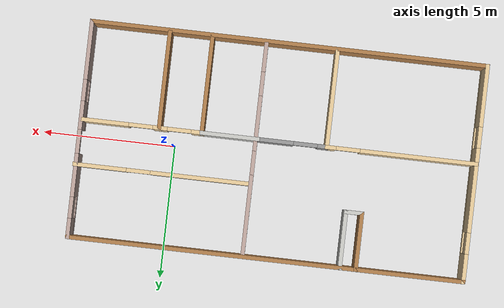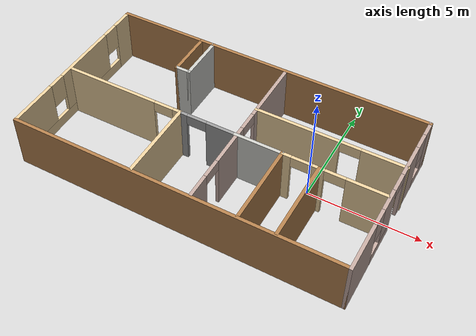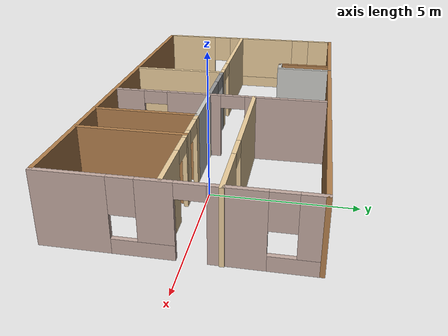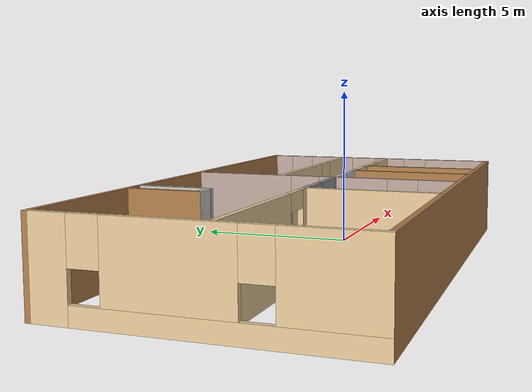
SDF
<?xml version='1.0'?>
<sdf version='1.6'>
  <model name='Building'>
    <pose frame=''>-3.87524 -0.223279 0 0 -0 0</pose>
    <link name='Wall_10'>
      <pose frame=''>-4.62797 -0.372796 0 0 -0 0</pose>
      <visual name='Wall_10_Visual_0'>
        <pose frame=''>-0.658179 0 1.25 0 -0 0</pose>
        <geometry>
          <box>
            <size>4.43364 0.15 2.5</size>
          </box>
        </geometry>
        <material>
          <script>
            <uri>file://media/materials/scripts/gazebo.material</uri>
            <name>Gazebo/Grey</name>
          </script>
          <ambient>0.921569 0.807843 0.615686 1</ambient>
        </material>
        <meta>
          <layer>0</layer>
        </meta>
      </visual>
      <collision name='Wall_10_Collision_0'>
        <geometry>
          <box>
            <size>4.43364 0.15 2.5</size>
          </box>
        </geometry>
        <pose frame=''>-0.658179 0 1.25 0 -0 0</pose>
      </collision>
      <visual name='Wall_10_Visual_1'>
        <pose frame=''>2.66682 0 1.25 0 -0 0</pose>
        <geometry>
          <box>
            <size>0.416358 0.15 2.5</size>
          </box>
        </geometry>
        <material>
          <script>
            <uri>file://media/materials/scripts/gazebo.material</uri>
            <name>Gazebo/Grey</name>
          </script>
          <ambient>0.921569 0.807843 0.615686 1</ambient>
        </material>
        <meta>
          <layer>0</layer>
        </meta>
      </visual>
      <collision name='Wall_10_Collision_1'>
        <geometry>
          <box>
            <size>0.416358 0.15 2.5</size>
          </box>
        </geometry>
        <pose frame=''>2.66682 0 1.25 0 -0 0</pose>
      </collision>
      <visual name='Wall_10_Visual_2'>
        <pose frame=''>2.00864 0 2.25 0 -0 0</pose>
        <geometry>
          <box>
            <size>0.9 0.15 0.5</size>
          </box>
        </geometry>
        <material>
          <script>
            <uri>file://media/materials/scripts/gazebo.material</uri>
            <name>Gazebo/Grey</name>
          </script>
          <ambient>0.921569 0.807843 0.615686 1</ambient>
        </material>
        <meta>
          <layer>0</layer>
        </meta>
      </visual>
      <collision name='Wall_10_Collision_2'>
        <geometry>
          <box>
            <size>0.9 0.15 0.5</size>
          </box>
        </geometry>
        <pose frame=''>2.00864 0 2.25 0 -0 0</pose>
      </collision>
    </link>
    <link name='Wall_11'>
      <collision name='Wall_11_Collision'>
        <geometry>
          <box>
            <size>3.75 0.15 2.5</size>
          </box>
        </geometry>
        <pose frame=''>0 0 1.25 0 -0 0</pose>
      </collision>
      <visual name='Wall_11_Visual'>
        <pose frame=''>0 0 1.25 0 -0 0</pose>
        <geometry>
          <box>
            <size>3.75 0.15 2.5</size>
          </box>
        </geometry>
        <material>
          <script>
            <uri>file://media/materials/scripts/gazebo.material</uri>
            <name>Gazebo/Grey</name>
          </script>
          <ambient>0.921569 0.807843 0.615686 1</ambient>
        </material>
        <meta>
          <layer>0</layer>
        </meta>
      </visual>
      <pose frame=''>-1.82797 -2.1728 0 0 0 -1.5708</pose>
    </link>
    <link name='Wall_13'>
      <collision name='Wall_13_Collision'>
        <geometry>
          <box>
            <size>15 0.15 2.5</size>
          </box>
        </geometry>
        <pose frame=''>0 0 1.25 0 -0 0</pose>
      </collision>
      <visual name='Wall_13_Visual'>
        <pose frame=''>0 0 1.25 0 -0 0</pose>
        <geometry>
          <box>
            <size>15 0.15 2.5</size>
          </box>
        </geometry>
        <material>
          <script>
            <uri>file://media/materials/scripts/gazebo.material</uri>
            <name>Gazebo/Wood</name>
          </script>
          <ambient>1 1 1 1</ambient>
        </material>
        <meta>
          <layer>0</layer>
        </meta>
      </visual>
      <pose frame=''>-0.019546 4.05 0 0 -0 0</pose>
    </link>
    <link name='Wall_17'>
      <pose frame=''>0.844548 -0.003816 0 0 0 -1.5708</pose>
      <visual name='Wall_17_Visual_0'>
        <pose frame=''>-2.48974 0 1.25 0 -0 0</pose>
        <geometry>
          <box>
            <size>3.02052 0.15 2.5</size>
          </box>
        </geometry>
        <material>
          <script>
            <uri>file://media/materials/scripts/gazebo.material</uri>
            <name>Gazebo/Grey</name>
          </script>
          <ambient>0.760784 0.662745 0.627451 1</ambient>
        </material>
        <meta>
          <layer>0</layer>
        </meta>
      </visual>
      <collision name='Wall_17_Collision_0'>
        <geometry>
          <box>
            <size>3.02052 0.15 2.5</size>
          </box>
        </geometry>
        <pose frame=''>-2.48974 0 1.25 0 -0 0</pose>
      </collision>
      <visual name='Wall_17_Visual_1'>
        <pose frame=''>0.954141 0 1.25 0 -0 0</pose>
        <geometry>
          <box>
            <size>2.06725 0.15 2.5</size>
          </box>
        </geometry>
        <material>
          <script>
            <uri>file://media/materials/scripts/gazebo.material</uri>
            <name>Gazebo/Grey</name>
          </script>
          <ambient>0.760784 0.662745 0.627451 1</ambient>
        </material>
        <meta>
          <layer>0</layer>
        </meta>
      </visual>
      <collision name='Wall_17_Collision_1'>
        <geometry>
          <box>
            <size>2.06725 0.15 2.5</size>
          </box>
        </geometry>
        <pose frame=''>0.954141 0 1.25 0 -0 0</pose>
      </collision>
      <visual name='Wall_17_Visual_2'>
        <pose frame=''>3.44388 0 1.25 0 -0 0</pose>
        <geometry>
          <box>
            <size>1.11223 0.15 2.5</size>
          </box>
        </geometry>
        <material>
          <script>
            <uri>file://media/materials/scripts/gazebo.material</uri>
            <name>Gazebo/Grey</name>
          </script>
          <ambient>0.760784 0.662745 0.627451 1</ambient>
        </material>
        <meta>
          <layer>0</layer>
        </meta>
      </visual>
      <collision name='Wall_17_Collision_2'>
        <geometry>
          <box>
            <size>1.11223 0.15 2.5</size>
          </box>
        </geometry>
        <pose frame=''>3.44388 0 1.25 0 -0 0</pose>
      </collision>
      <visual name='Wall_17_Visual_3'>
        <pose frame=''>-0.529485 0 2.25 0 -0 0</pose>
        <geometry>
          <box>
            <size>0.9 0.15 0.5</size>
          </box>
        </geometry>
        <material>
          <script>
            <uri>file://media/materials/scripts/gazebo.material</uri>
            <name>Gazebo/Grey</name>
          </script>
          <ambient>0.760784 0.662745 0.627451 1</ambient>
        </material>
        <meta>
          <layer>0</layer>
        </meta>
      </visual>
      <collision name='Wall_17_Collision_3'>
        <geometry>
          <box>
            <size>0.9 0.15 0.5</size>
          </box>
        </geometry>
        <pose frame=''>-0.529485 0 2.25 0 -0 0</pose>
      </collision>
      <visual name='Wall_17_Visual_4'>
        <pose frame=''>2.43777 0 2.25 0 -0 0</pose>
        <geometry>
          <box>
            <size>0.9 0.15 0.5</size>
          </box>
        </geometry>
        <material>
          <script>
            <uri>file://media/materials/scripts/gazebo.material</uri>
            <name>Gazebo/Grey</name>
          </script>
          <ambient>0.760784 0.662745 0.627451 1</ambient>
        </material>
        <meta>
          <layer>0</layer>
        </meta>
      </visual>
      <collision name='Wall_17_Collision_4'>
        <geometry>
          <box>
            <size>0.9 0.15 0.5</size>
          </box>
        </geometry>
        <pose frame=''>2.43777 0 2.25 0 -0 0</pose>
      </collision>
    </link>
    <link name='Wall_19'>
      <pose frame=''>-0.52797 -0.372796 0 0 -0 0</pose>
      <visual name='Wall_19_Visual_0'>
        <pose frame=''>-1.15924 0 1.25 0 -0 0</pose>
        <geometry>
          <box>
            <size>0.431514 0.15 2.5</size>
          </box>
        </geometry>
        <material>
          <script>
            <uri>file://media/materials/scripts/gazebo.material</uri>
            <name>Gazebo/Grey</name>
          </script>
          <ambient>1 1 1 1</ambient>
        </material>
        <meta>
          <layer>0</layer>
        </meta>
      </visual>
      <collision name='Wall_19_Collision_0'>
        <geometry>
          <box>
            <size>0.431514 0.15 2.5</size>
          </box>
        </geometry>
        <pose frame=''>-1.15924 0 1.25 0 -0 0</pose>
      </collision>
      <visual name='Wall_19_Visual_1'>
        <pose frame=''>0.665757 0 1.25 0 -0 0</pose>
        <geometry>
          <box>
            <size>1.41849 0.15 2.5</size>
          </box>
        </geometry>
        <material>
          <script>
            <uri>file://media/materials/scripts/gazebo.material</uri>
            <name>Gazebo/Grey</name>
          </script>
          <ambient>1 1 1 1</ambient>
        </material>
        <meta>
          <layer>0</layer>
        </meta>
      </visual>
      <collision name='Wall_19_Collision_1'>
        <geometry>
          <box>
            <size>1.41849 0.15 2.5</size>
          </box>
        </geometry>
        <pose frame=''>0.665757 0 1.25 0 -0 0</pose>
      </collision>
      <visual name='Wall_19_Visual_2'>
        <pose frame=''>-0.493486 0 2.25 0 -0 0</pose>
        <geometry>
          <box>
            <size>0.9 0.15 0.5</size>
          </box>
        </geometry>
        <material>
          <script>
            <uri>file://media/materials/scripts/gazebo.material</uri>
            <name>Gazebo/Grey</name>
          </script>
          <ambient>1 1 1 1</ambient>
        </material>
        <meta>
          <layer>0</layer>
        </meta>
      </visual>
      <collision name='Wall_19_Collision_2'>
        <geometry>
          <box>
            <size>0.9 0.15 0.5</size>
          </box>
        </geometry>
        <pose frame=''>-0.493486 0 2.25 0 -0 0</pose>
      </collision>
    </link>
    <link name='Wall_23'>
      <collision name='Wall_23_Collision'>
        <geometry>
          <box>
            <size>2.25 0.15 2.5</size>
          </box>
        </geometry>
        <pose frame=''>0 0 1.25 0 -0 0</pose>
      </collision>
      <visual name='Wall_23_Visual'>
        <pose frame=''>0 0 1.25 0 -0 0</pose>
        <geometry>
          <box>
            <size>2.25 0.15 2.5</size>
          </box>
        </geometry>
        <material>
          <script>
            <uri>file://media/materials/scripts/gazebo.material</uri>
            <name>Gazebo/Wood</name>
          </script>
          <ambient>1 1 1 1</ambient>
        </material>
        <meta>
          <layer>0</layer>
        </meta>
      </visual>
      <pose frame=''>-3.40749 2.99355 0 0 0 -1.5708</pose>
    </link>
    <link name='Wall_24'>
      <collision name='Wall_24_Collision'>
        <geometry>
          <box>
            <size>0.75 0.15 2.5</size>
          </box>
        </geometry>
        <pose frame=''>0 0 1.25 0 -0 0</pose>
      </collision>
      <visual name='Wall_24_Visual'>
        <pose frame=''>0 0 1.25 0 -0 0</pose>
        <geometry>
          <box>
            <size>0.75 0.15 2.5</size>
          </box>
        </geometry>
        <material>
          <script>
            <uri>file://media/materials/scripts/gazebo.material</uri>
            <name>Gazebo/CeilingTiled</name>
          </script>
          <ambient>1 1 1 1</ambient>
        </material>
        <meta>
          <layer>0</layer>
        </meta>
      </visual>
      <pose frame=''>-3.10749 1.94355 0 0 -0 0</pose>
    </link>
    <link name='Wall_27'>
      <collision name='Wall_27_Collision'>
        <geometry>
          <box>
            <size>2.25 0.15 2.5</size>
          </box>
        </geometry>
        <pose frame=''>0 0 1.25 0 -0 0</pose>
      </collision>
      <visual name='Wall_27_Visual'>
        <pose frame=''>0 0 1.25 0 -0 0</pose>
        <geometry>
          <box>
            <size>2.25 0.15 2.5</size>
          </box>
        </geometry>
        <material>
          <script>
            <uri>file://media/materials/scripts/gazebo.material</uri>
            <name>Gazebo/CeilingTiled</name>
          </script>
          <ambient>1 1 1 1</ambient>
        </material>
        <meta>
          <layer>0</layer>
        </meta>
      </visual>
      <pose frame=''>-2.80749 2.99355 0 0 -0 1.5708</pose>
    </link>
    <link name='Wall_3'>
      <pose frame=''>-7.44455 0 0 0 0 -1.5708</pose>
      <visual name='Wall_3_Visual_0'>
        <pose frame=''>-3.5654 0 1.25 0 -0 0</pose>
        <geometry>
          <box>
            <size>1.1192 0.15 2.5</size>
          </box>
        </geometry>
        <material>
          <script>
            <uri>file://media/materials/scripts/gazebo.material</uri>
            <name>Gazebo/Grey</name>
          </script>
          <ambient>0.921569 0.807843 0.615686 1</ambient>
        </material>
        <meta>
          <layer>0</layer>
        </meta>
      </visual>
      <collision name='Wall_3_Collision_0'>
        <geometry>
          <box>
            <size>1.1192 0.15 2.5</size>
          </box>
        </geometry>
        <pose frame=''>-3.5654 0 1.25 0 -0 0</pose>
      </collision>
      <visual name='Wall_3_Visual_1'>
        <pose frame=''>0.559598 0 0.25 0 -0 0</pose>
        <geometry>
          <box>
            <size>7.1308 0.15 0.5</size>
          </box>
        </geometry>
        <material>
          <script>
            <uri>file://media/materials/scripts/gazebo.material</uri>
            <name>Gazebo/Grey</name>
          </script>
          <ambient>0.921569 0.807843 0.615686 1</ambient>
        </material>
        <meta>
          <layer>0</layer>
        </meta>
      </visual>
      <collision name='Wall_3_Collision_1'>
        <geometry>
          <box>
            <size>7.1308 0.15 0.5</size>
          </box>
        </geometry>
        <pose frame=''>0.559598 0 0.25 0 -0 0</pose>
      </collision>
      <visual name='Wall_3_Visual_2'>
        <pose frame=''>-0.61744 0 1.5 0 -0 0</pose>
        <geometry>
          <box>
            <size>3.17673 0.15 2</size>
          </box>
        </geometry>
        <material>
          <script>
            <uri>file://media/materials/scripts/gazebo.material</uri>
            <name>Gazebo/Grey</name>
          </script>
          <ambient>0.921569 0.807843 0.615686 1</ambient>
        </material>
        <meta>
          <layer>0</layer>
        </meta>
      </visual>
      <collision name='Wall_3_Collision_2'>
        <geometry>
          <box>
            <size>3.17673 0.15 2</size>
          </box>
        </geometry>
        <pose frame=''>-0.61744 0 1.5 0 -0 0</pose>
      </collision>
      <visual name='Wall_3_Visual_3'>
        <pose frame=''>2.94796 0 1.5 0 -0 0</pose>
        <geometry>
          <box>
            <size>2.35407 0.15 2</size>
          </box>
        </geometry>
        <material>
          <script>
            <uri>file://media/materials/scripts/gazebo.material</uri>
            <name>Gazebo/Grey</name>
          </script>
          <ambient>0.921569 0.807843 0.615686 1</ambient>
        </material>
        <meta>
          <layer>0</layer>
        </meta>
      </visual>
      <collision name='Wall_3_Collision_3'>
        <geometry>
          <box>
            <size>2.35407 0.15 2</size>
          </box>
        </geometry>
        <pose frame=''>2.94796 0 1.5 0 -0 0</pose>
      </collision>
      <visual name='Wall_3_Visual_4'>
        <pose frame=''>-2.6058 0 1.9 0 -0 0</pose>
        <geometry>
          <box>
            <size>0.8 0.15 1.2</size>
          </box>
        </geometry>
        <material>
          <script>
            <uri>file://media/materials/scripts/gazebo.material</uri>
            <name>Gazebo/Grey</name>
          </script>
          <ambient>0.921569 0.807843 0.615686 1</ambient>
        </material>
        <meta>
          <layer>0</layer>
        </meta>
      </visual>
      <collision name='Wall_3_Collision_4'>
        <geometry>
          <box>
            <size>0.8 0.15 1.2</size>
          </box>
        </geometry>
        <pose frame=''>-2.6058 0 1.9 0 -0 0</pose>
      </collision>
      <visual name='Wall_3_Visual_5'>
        <pose frame=''>1.37092 0 1.9 0 -0 0</pose>
        <geometry>
          <box>
            <size>0.8 0.15 1.2</size>
          </box>
        </geometry>
        <material>
          <script>
            <uri>file://media/materials/scripts/gazebo.material</uri>
            <name>Gazebo/Grey</name>
          </script>
          <ambient>0.921569 0.807843 0.615686 1</ambient>
        </material>
        <meta>
          <layer>0</layer>
        </meta>
      </visual>
      <collision name='Wall_3_Collision_5'>
        <geometry>
          <box>
            <size>0.8 0.15 1.2</size>
          </box>
        </geometry>
        <pose frame=''>1.37092 0 1.9 0 -0 0</pose>
      </collision>
    </link>
    <link name='Wall_31'>
      <pose frame=''>4.14455 1.32102 0 0 -0 0</pose>
      <visual name='Wall_31_Visual_0'>
        <pose frame=''>-1.45177 0 1.25 0 -0 0</pose>
        <geometry>
          <box>
            <size>3.84645 0.15 2.5</size>
          </box>
        </geometry>
        <material>
          <script>
            <uri>file://media/materials/scripts/gazebo.material</uri>
            <name>Gazebo/Grey</name>
          </script>
          <ambient>0.921569 0.807843 0.615686 1</ambient>
        </material>
        <meta>
          <layer>0</layer>
        </meta>
      </visual>
      <collision name='Wall_31_Collision_0'>
        <geometry>
          <box>
            <size>3.84645 0.15 2.5</size>
          </box>
        </geometry>
        <pose frame=''>-1.45177 0 1.25 0 -0 0</pose>
      </collision>
      <visual name='Wall_31_Visual_1'>
        <pose frame=''>2.37323 0 1.25 0 -0 0</pose>
        <geometry>
          <box>
            <size>2.00355 0.15 2.5</size>
          </box>
        </geometry>
        <material>
          <script>
            <uri>file://media/materials/scripts/gazebo.material</uri>
            <name>Gazebo/Grey</name>
          </script>
          <ambient>0.921569 0.807843 0.615686 1</ambient>
        </material>
        <meta>
          <layer>0</layer>
        </meta>
      </visual>
      <collision name='Wall_31_Collision_1'>
        <geometry>
          <box>
            <size>2.00355 0.15 2.5</size>
          </box>
        </geometry>
        <pose frame=''>2.37323 0 1.25 0 -0 0</pose>
      </collision>
      <visual name='Wall_31_Visual_2'>
        <pose frame=''>0.921452 0 2.25 0 -0 0</pose>
        <geometry>
          <box>
            <size>0.9 0.15 0.5</size>
          </box>
        </geometry>
        <material>
          <script>
            <uri>file://media/materials/scripts/gazebo.material</uri>
            <name>Gazebo/Grey</name>
          </script>
          <ambient>0.921569 0.807843 0.615686 1</ambient>
        </material>
        <meta>
          <layer>0</layer>
        </meta>
      </visual>
      <collision name='Wall_31_Collision_2'>
        <geometry>
          <box>
            <size>0.9 0.15 0.5</size>
          </box>
        </geometry>
        <pose frame=''>0.921452 0 2.25 0 -0 0</pose>
      </collision>
    </link>
    <link name='Wall_33'>
      <collision name='Wall_33_Collision'>
        <geometry>
          <box>
            <size>2.25 0.15 2.5</size>
          </box>
        </geometry>
        <pose frame=''>0 0 1.25 0 -0 0</pose>
      </collision>
      <visual name='Wall_33_Visual'>
        <pose frame=''>0 0 1.25 0 -0 0</pose>
        <geometry>
          <box>
            <size>2.25 0.15 2.5</size>
          </box>
        </geometry>
        <material>
          <script>
            <uri>file://media/materials/scripts/gazebo.material</uri>
            <name>Gazebo/CeilingTiled</name>
          </script>
          <ambient>1 1 1 1</ambient>
        </material>
        <meta>
          <layer>0</layer>
        </meta>
      </visual>
      <pose frame=''>1.82203 -0.372796 0 0 -0 0</pose>
    </link>
    <link name='Wall_34'>
      <collision name='Wall_34_Collision'>
        <geometry>
          <box>
            <size>3.75 0.15 2.5</size>
          </box>
        </geometry>
        <pose frame=''>0 0 1.25 0 -0 0</pose>
      </collision>
      <visual name='Wall_34_Visual'>
        <pose frame=''>0 0 1.25 0 -0 0</pose>
        <geometry>
          <box>
            <size>3.75 0.15 2.5</size>
          </box>
        </geometry>
        <material>
          <script>
            <uri>file://media/materials/scripts/gazebo.material</uri>
            <name>Gazebo/Wood</name>
          </script>
          <ambient>1 1 1 1</ambient>
        </material>
        <meta>
          <layer>0</layer>
        </meta>
      </visual>
      <pose frame=''>2.87203 -2.1728 0 0 0 -1.5708</pose>
    </link>
    <link name='Wall_36'>
      <pose frame=''>3.67203 -0.372796 0 0 -0 0</pose>
      <visual name='Wall_36_Visual_0'>
        <pose frame=''>-0.6385 0 1.25 0 -0 0</pose>
        <geometry>
          <box>
            <size>0.472999 0.15 2.5</size>
          </box>
        </geometry>
        <material>
          <script>
            <uri>file://media/materials/scripts/gazebo.material</uri>
            <name>Gazebo/Grey</name>
          </script>
          <ambient>0.921569 0.807843 0.615686 1</ambient>
        </material>
        <meta>
          <layer>0</layer>
        </meta>
      </visual>
      <collision name='Wall_36_Collision_0'>
        <geometry>
          <box>
            <size>0.472999 0.15 2.5</size>
          </box>
        </geometry>
        <pose frame=''>-0.6385 0 1.25 0 -0 0</pose>
      </collision>
      <visual name='Wall_36_Visual_1'>
        <pose frame=''>0.6865 0 1.25 0 -0 0</pose>
        <geometry>
          <box>
            <size>0.377001 0.15 2.5</size>
          </box>
        </geometry>
        <material>
          <script>
            <uri>file://media/materials/scripts/gazebo.material</uri>
            <name>Gazebo/Grey</name>
          </script>
          <ambient>0.921569 0.807843 0.615686 1</ambient>
        </material>
        <meta>
          <layer>0</layer>
        </meta>
      </visual>
      <collision name='Wall_36_Collision_1'>
        <geometry>
          <box>
            <size>0.377001 0.15 2.5</size>
          </box>
        </geometry>
        <pose frame=''>0.6865 0 1.25 0 -0 0</pose>
      </collision>
      <visual name='Wall_36_Visual_2'>
        <pose frame=''>0.047999 0 2.25 0 -0 0</pose>
        <geometry>
          <box>
            <size>0.9 0.15 0.5</size>
          </box>
        </geometry>
        <material>
          <script>
            <uri>file://media/materials/scripts/gazebo.material</uri>
            <name>Gazebo/Grey</name>
          </script>
          <ambient>0.921569 0.807843 0.615686 1</ambient>
        </material>
        <meta>
          <layer>0</layer>
        </meta>
      </visual>
      <collision name='Wall_36_Collision_2'>
        <geometry>
          <box>
            <size>0.9 0.15 0.5</size>
          </box>
        </geometry>
        <pose frame=''>0.047999 0 2.25 0 -0 0</pose>
      </collision>
    </link>
    <link name='Wall_37'>
      <collision name='Wall_37_Collision'>
        <geometry>
          <box>
            <size>3.75 0.15 2.5</size>
          </box>
        </geometry>
        <pose frame=''>0 0 1.25 0 -0 0</pose>
      </collision>
      <visual name='Wall_37_Visual'>
        <pose frame=''>0 0 1.25 0 -0 0</pose>
        <geometry>
          <box>
            <size>3.75 0.15 2.5</size>
          </box>
        </geometry>
        <material>
          <script>
            <uri>file://media/materials/scripts/gazebo.material</uri>
            <name>Gazebo/Wood</name>
          </script>
          <ambient>1 1 1 1</ambient>
        </material>
        <meta>
          <layer>0</layer>
        </meta>
      </visual>
      <pose frame=''>4.47203 -2.1728 0 0 0 -1.5708</pose>
    </link>
    <link name='Wall_39'>
      <pose frame=''>5.89703 -0.372796 0 0 -0 0</pose>
      <visual name='Wall_39_Visual_0'>
        <pose frame=''>-1.34463 0 1.25 0 -0 0</pose>
        <geometry>
          <box>
            <size>0.31074 0.15 2.5</size>
          </box>
        </geometry>
        <material>
          <script>
            <uri>file://media/materials/scripts/gazebo.material</uri>
            <name>Gazebo/Grey</name>
          </script>
          <ambient>0.921569 0.807843 0.615686 1</ambient>
        </material>
        <meta>
          <layer>0</layer>
        </meta>
      </visual>
      <collision name='Wall_39_Collision_0'>
        <geometry>
          <box>
            <size>0.31074 0.15 2.5</size>
          </box>
        </geometry>
        <pose frame=''>-1.34463 0 1.25 0 -0 0</pose>
      </collision>
      <visual name='Wall_39_Visual_1'>
        <pose frame=''>0.60537 0 1.25 0 -0 0</pose>
        <geometry>
          <box>
            <size>1.78926 0.15 2.5</size>
          </box>
        </geometry>
        <material>
          <script>
            <uri>file://media/materials/scripts/gazebo.material</uri>
            <name>Gazebo/Grey</name>
          </script>
          <ambient>0.921569 0.807843 0.615686 1</ambient>
        </material>
        <meta>
          <layer>0</layer>
        </meta>
      </visual>
      <collision name='Wall_39_Collision_1'>
        <geometry>
          <box>
            <size>1.78926 0.15 2.5</size>
          </box>
        </geometry>
        <pose frame=''>0.60537 0 1.25 0 -0 0</pose>
      </collision>
      <visual name='Wall_39_Visual_2'>
        <pose frame=''>-0.73926 0 2.25 0 -0 0</pose>
        <geometry>
          <box>
            <size>0.9 0.15 0.5</size>
          </box>
        </geometry>
        <material>
          <script>
            <uri>file://media/materials/scripts/gazebo.material</uri>
            <name>Gazebo/Grey</name>
          </script>
          <ambient>0.921569 0.807843 0.615686 1</ambient>
        </material>
        <meta>
          <layer>0</layer>
        </meta>
      </visual>
      <collision name='Wall_39_Collision_2'>
        <geometry>
          <box>
            <size>0.9 0.15 0.5</size>
          </box>
        </geometry>
        <pose frame=''>-0.73926 0 2.25 0 -0 0</pose>
      </collision>
    </link>
    <link name='Wall_4'>
      <collision name='Wall_4_Collision'>
        <geometry>
          <box>
            <size>15 0.15 2.5</size>
          </box>
        </geometry>
        <pose frame=''>0 0 1.25 0 -0 0</pose>
      </collision>
      <visual name='Wall_4_Visual'>
        <pose frame=''>0 0 1.25 0 -0 0</pose>
        <geometry>
          <box>
            <size>15 0.15 2.5</size>
          </box>
        </geometry>
        <material>
          <script>
            <uri>file://media/materials/scripts/gazebo.material</uri>
            <name>Gazebo/Wood</name>
          </script>
          <ambient>1 1 1 1</ambient>
        </material>
        <meta>
          <layer>0</layer>
        </meta>
      </visual>
      <pose frame=''>-0.019546 -4.05 0 0 -0 0</pose>
    </link>
    <link name='Wall_5'>
      <pose frame=''>7.40545 0 0 0 -0 1.5708</pose>
      <visual name='Wall_5_Visual_0'>
        <pose frame=''>-2.99385 0 1.25 0 -0 0</pose>
        <geometry>
          <box>
            <size>2.2623 0.15 2.5</size>
          </box>
        </geometry>
        <material>
          <script>
            <uri>file://media/materials/scripts/gazebo.material</uri>
            <name>Gazebo/Grey</name>
          </script>
          <ambient>0.760784 0.662745 0.627451 1</ambient>
        </material>
        <meta>
          <layer>0</layer>
        </meta>
      </visual>
      <collision name='Wall_5_Collision_0'>
        <geometry>
          <box>
            <size>2.2623 0.15 2.5</size>
          </box>
        </geometry>
        <pose frame=''>-2.99385 0 1.25 0 -0 0</pose>
      </collision>
      <visual name='Wall_5_Visual_1'>
        <pose frame=''>1.72839 0 1.25 0 -0 0</pose>
        <geometry>
          <box>
            <size>1.62781 0.15 2.5</size>
          </box>
        </geometry>
        <material>
          <script>
            <uri>file://media/materials/scripts/gazebo.material</uri>
            <name>Gazebo/Grey</name>
          </script>
          <ambient>0.760784 0.662745 0.627451 1</ambient>
        </material>
        <meta>
          <layer>0</layer>
        </meta>
      </visual>
      <collision name='Wall_5_Collision_1'>
        <geometry>
          <box>
            <size>1.62781 0.15 2.5</size>
          </box>
        </geometry>
        <pose frame=''>1.72839 0 1.25 0 -0 0</pose>
      </collision>
      <visual name='Wall_5_Visual_2'>
        <pose frame=''>-0.924104 0 0.25 0 -0 0</pose>
        <geometry>
          <box>
            <size>1.87718 0.15 0.5</size>
          </box>
        </geometry>
        <material>
          <script>
            <uri>file://media/materials/scripts/gazebo.material</uri>
            <name>Gazebo/Grey</name>
          </script>
          <ambient>0.760784 0.662745 0.627451 1</ambient>
        </material>
        <meta>
          <layer>0</layer>
        </meta>
      </visual>
      <collision name='Wall_5_Collision_2'>
        <geometry>
          <box>
            <size>1.87718 0.15 0.5</size>
          </box>
        </geometry>
        <pose frame=''>-0.924104 0 0.25 0 -0 0</pose>
      </collision>
      <visual name='Wall_5_Visual_3'>
        <pose frame=''>3.33365 0 0.25 0 -0 0</pose>
        <geometry>
          <box>
            <size>1.5827 0.15 0.5</size>
          </box>
        </geometry>
        <material>
          <script>
            <uri>file://media/materials/scripts/gazebo.material</uri>
            <name>Gazebo/Grey</name>
          </script>
          <ambient>0.760784 0.662745 0.627451 1</ambient>
        </material>
        <meta>
          <layer>0</layer>
        </meta>
      </visual>
      <collision name='Wall_5_Collision_3'>
        <geometry>
          <box>
            <size>1.5827 0.15 0.5</size>
          </box>
        </geometry>
        <pose frame=''>3.33365 0 0.25 0 -0 0</pose>
      </collision>
      <visual name='Wall_5_Visual_4'>
        <pose frame=''>-0.524104 0 1.5 0 -0 0</pose>
        <geometry>
          <box>
            <size>1.07718 0.15 2</size>
          </box>
        </geometry>
        <material>
          <script>
            <uri>file://media/materials/scripts/gazebo.material</uri>
            <name>Gazebo/Grey</name>
          </script>
          <ambient>0.760784 0.662745 0.627451 1</ambient>
        </material>
        <meta>
          <layer>0</layer>
        </meta>
      </visual>
      <collision name='Wall_5_Collision_4'>
        <geometry>
          <box>
            <size>1.07718 0.15 2</size>
          </box>
        </geometry>
        <pose frame=''>-0.524104 0 1.5 0 -0 0</pose>
      </collision>
      <visual name='Wall_5_Visual_5'>
        <pose frame=''>-0.524104 0 1.5 0 -0 0</pose>
        <geometry>
          <box>
            <size>1.07718 0.15 2</size>
          </box>
        </geometry>
        <material>
          <script>
            <uri>file://media/materials/scripts/gazebo.material</uri>
            <name>Gazebo/Grey</name>
          </script>
          <ambient>0.760784 0.662745 0.627451 1</ambient>
        </material>
        <meta>
          <layer>0</layer>
        </meta>
      </visual>
      <collision name='Wall_5_Collision_5'>
        <geometry>
          <box>
            <size>1.07718 0.15 2</size>
          </box>
        </geometry>
        <pose frame=''>-0.524104 0 1.5 0 -0 0</pose>
      </collision>
      <visual name='Wall_5_Visual_6'>
        <pose frame=''>3.73365 0 1.5 0 -0 0</pose>
        <geometry>
          <box>
            <size>0.782703 0.15 2</size>
          </box>
        </geometry>
        <material>
          <script>
            <uri>file://media/materials/scripts/gazebo.material</uri>
            <name>Gazebo/Grey</name>
          </script>
          <ambient>0.760784 0.662745 0.627451 1</ambient>
        </material>
        <meta>
          <layer>0</layer>
        </meta>
      </visual>
      <collision name='Wall_5_Collision_6'>
        <geometry>
          <box>
            <size>0.782703 0.15 2</size>
          </box>
        </geometry>
        <pose frame=''>3.73365 0 1.5 0 -0 0</pose>
      </collision>
      <visual name='Wall_5_Visual_7'>
        <pose frame=''>-1.4627 0 1.9 0 -0 0</pose>
        <geometry>
          <box>
            <size>0.8 0.15 1.2</size>
          </box>
        </geometry>
        <material>
          <script>
            <uri>file://media/materials/scripts/gazebo.material</uri>
            <name>Gazebo/Grey</name>
          </script>
          <ambient>0.760784 0.662745 0.627451 1</ambient>
        </material>
        <meta>
          <layer>0</layer>
        </meta>
      </visual>
      <collision name='Wall_5_Collision_7'>
        <geometry>
          <box>
            <size>0.8 0.15 1.2</size>
          </box>
        </geometry>
        <pose frame=''>-1.4627 0 1.9 0 -0 0</pose>
      </collision>
      <visual name='Wall_5_Visual_8'>
        <pose frame=''>2.9423 0 1.9 0 -0 0</pose>
        <geometry>
          <box>
            <size>0.8 0.15 1.2</size>
          </box>
        </geometry>
        <material>
          <script>
            <uri>file://media/materials/scripts/gazebo.material</uri>
            <name>Gazebo/Grey</name>
          </script>
          <ambient>0.760784 0.662745 0.627451 1</ambient>
        </material>
        <meta>
          <layer>0</layer>
        </meta>
      </visual>
      <collision name='Wall_5_Collision_8'>
        <geometry>
          <box>
            <size>0.8 0.15 1.2</size>
          </box>
        </geometry>
        <pose frame=''>2.9423 0 1.9 0 -0 0</pose>
      </collision>
      <visual name='Wall_5_Visual_9'>
        <pose frame=''>0.464488 0 2.25 0 -0 0</pose>
        <geometry>
          <box>
            <size>0.9 0.15 0.5</size>
          </box>
        </geometry>
        <material>
          <script>
            <uri>file://media/materials/scripts/gazebo.material</uri>
            <name>Gazebo/Grey</name>
          </script>
          <ambient>0.760784 0.662745 0.627451 1</ambient>
        </material>
        <meta>
          <layer>0</layer>
        </meta>
      </visual>
      <collision name='Wall_5_Collision_9'>
        <geometry>
          <box>
            <size>0.9 0.15 0.5</size>
          </box>
        </geometry>
        <pose frame=''>0.464488 0 2.25 0 -0 0</pose>
      </collision>
      <visual name='Wall_5_Visual_10'>
        <pose frame=''>0.464488 0 2.25 0 -0 0</pose>
        <geometry>
          <box>
            <size>0.9 0.15 0.5</size>
          </box>
        </geometry>
        <material>
          <script>
            <uri>file://media/materials/scripts/gazebo.material</uri>
            <name>Gazebo/Grey</name>
          </script>
          <ambient>0.760784 0.662745 0.627451 1</ambient>
        </material>
        <meta>
          <layer>0</layer>
        </meta>
      </visual>
      <collision name='Wall_5_Collision_10'>
        <geometry>
          <box>
            <size>0.9 0.15 0.5</size>
          </box>
        </geometry>
        <pose frame=''>0.464488 0 2.25 0 -0 0</pose>
      </collision>
    </link>
    <static>1</static>
  </model>
</sdf>
